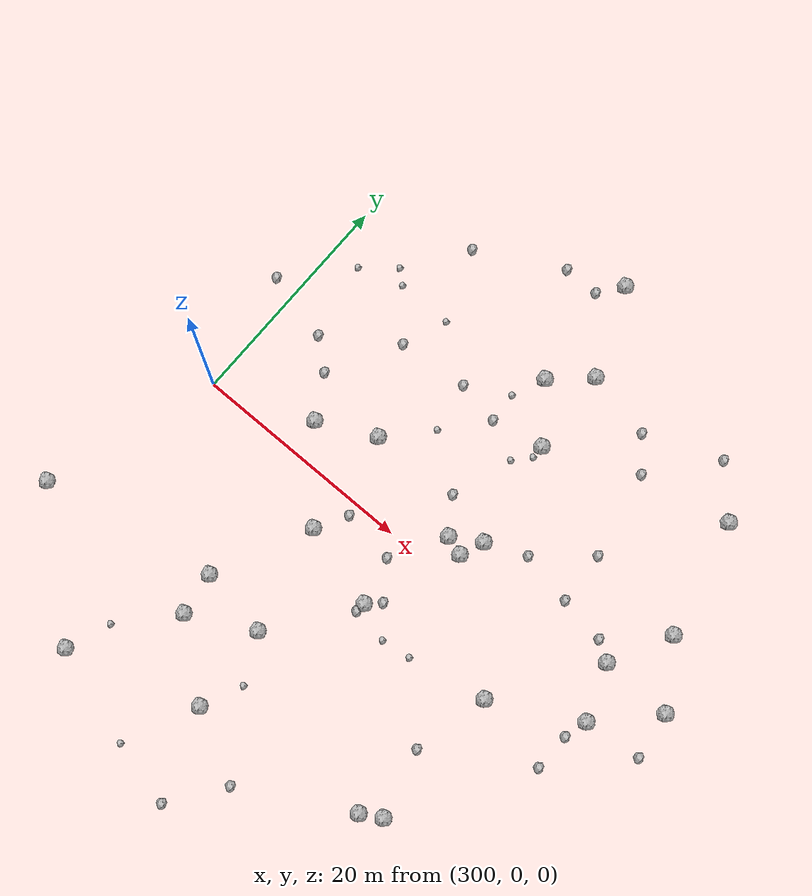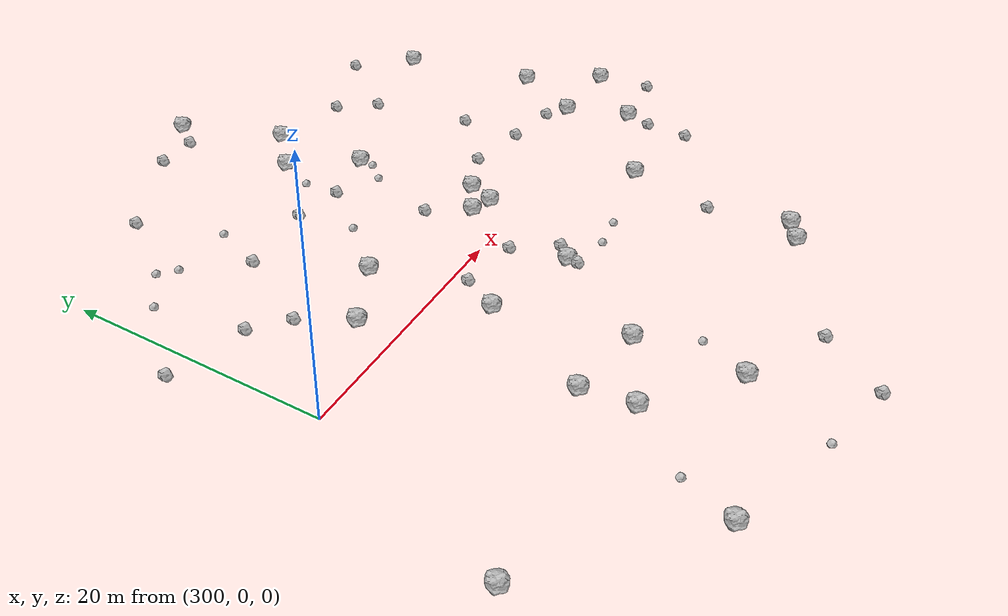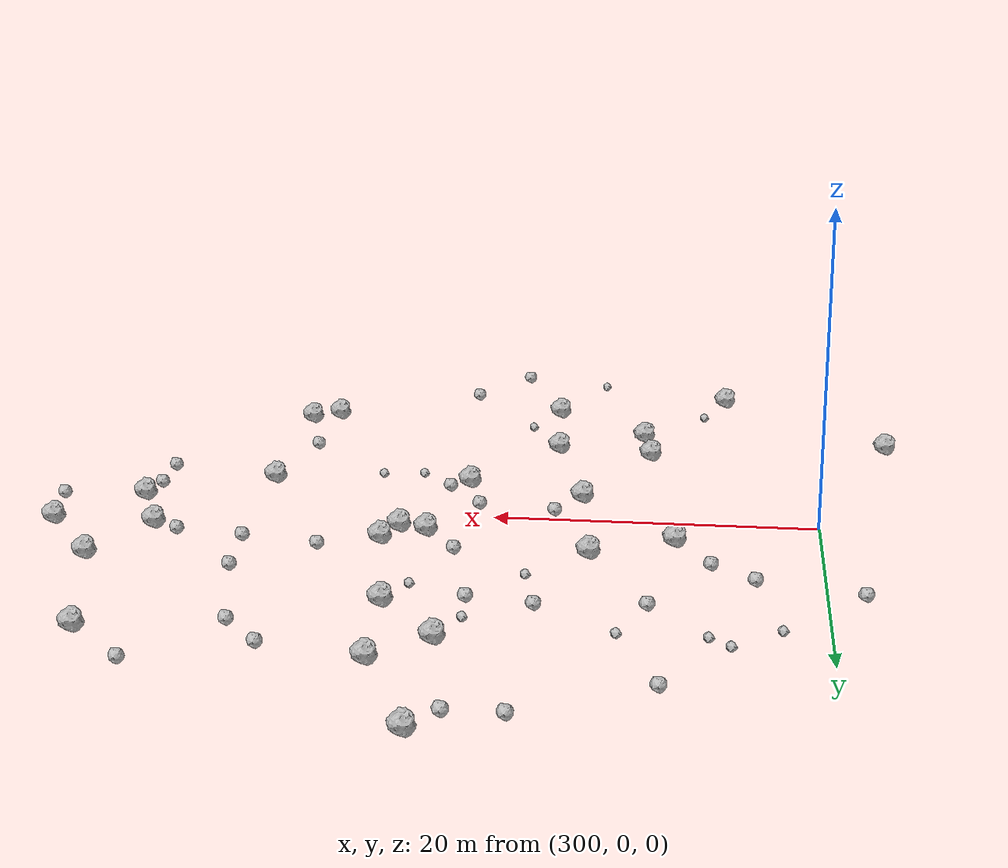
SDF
<sdf version="1.6">
 <world name="default">
  <include><uri>model://sun</uri></include>
  <model name="rock1_8_2">
   <include><uri>model://rock1</uri><pose>343.5614238039679 8.65994704328756 0.5 0 0 0</pose></include>
  </model>
  <model name="rock1_8_3">
   <include><uri>model://rock1</uri><pose>317.39145370163317 -21.369708069768677 0.5 0 0 0</pose></include>
  </model>
  <model name="rock1_8_4">
   <include><uri>model://rock1</uri><pose>340.7699369049381 3.270221666698639 0.5 0 0 0</pose></include>
  </model>
  <model name="rock1_8_5">
   <include><uri>model://rock1</uri><pose>308.78048914035577 3.151519740156175 0.5 0 0 0</pose></include>
  </model>
  <model name="rock1_8_6">
   <include><uri>model://rock1</uri><pose>334.86920854676544 -18.442619014291846 0.5 0 0 0</pose></include>
  </model>
  <model name="rock1_8_7">
   <include><uri>model://rock1</uri><pose>347.13186227085225 3.1360334075372265 0.5 0 0 0</pose></include>
  </model>
  <model name="rock1_8_8">
   <include><uri>model://rock1</uri><pose>326.4894609244206 4.433762117454805 0.5 0 0 0</pose></include>
  </model>
  <model name="rock1_8_9">
   <include><uri>model://rock1</uri><pose>325.62811777101683 2.319030448657884 0.5 0 0 0</pose></include>
  </model>
  <model name="rock1_8_10">
   <include><uri>model://rock1</uri><pose>333.0844712979249 -19.473799111217325 0.5 0 0 0</pose></include>
  </model>
  <model name="rock1_8_11">
   <include><uri>model://rock1</uri><pose>311.2551204223616 -16.435522388154588 0.5 0 0 0</pose></include>
  </model>
  <model name="rock1_8_12">
   <include><uri>model://rock1</uri><pose>314.77168146088246 -3.9689120745949467 0.5 0 0 0</pose></include>
  </model>
  <model name="rock1_8_13">
   <include><uri>model://rock1</uri><pose>324.6244734945305 21.64445033590774 0.5 0 0 0</pose></include>
  </model>
  <model name="rock1_8_14">
   <include><uri>model://rock1</uri><pose>305.6786174065834 -24.998955018333973 0.5 0 0 0</pose></include>
  </model>
  <model name="rock1_8_15">
   <include><uri>model://rock1</uri><pose>321.4167087565769 18.711921568260436 0.5 0 0 0</pose></include>
  </model>
  <model name="rock1_8_16">
   <include><uri>model://rock1</uri><pose>313.82739794976146 5.581569732228218 0.5 0 0 0</pose></include>
  </model>
  <model name="rock1_8_17">
   <include><uri>model://rock1</uri><pose>341.15338653460606 19.134328469310425 0.5 0 0 0</pose></include>
  </model>
  <model name="rock1_8_18">
   <include><uri>model://rock1</uri><pose>323.9028156993473 2.8818121976317173 0.5 0 0 0</pose></include>
  </model>
  <model name="rock1_8_19">
   <include><uri>model://rock1</uri><pose>342.5704444938446 -1.6189736535997064 0.5 0 0 0</pose></include>
  </model>
  <model name="rock1_8_20">
   <include><uri>model://rock1</uri><pose>294.94117803098214 -15.520933640791322 0.5 0 0 0</pose></include>
  </model>
  <model name="rock1_8_21">
   <include><uri>model://rock1</uri><pose>334.9589706462706 -5.651460827757639 0.5 0 0 0</pose></include>
  </model>
  <model name="rock1_8_22">
   <include><uri>model://rock1</uri><pose>321.45874367275286 29.61271866112684 0.5 0 0 0</pose></include>
  </model>
  <model name="rock1_8_23">
   <include><uri>model://rock1</uri><pose>322.1982075011481 -6.065303930339539 0.5 0 0 0</pose></include>
  </model>
  <model name="rock1_8_24">
   <include><uri>model://rock1</uri><pose>316.9372839265079 -13.53953766688451 0.5 0 0 0</pose></include>
  </model>
  <model name="rock1_8_25">
   <include><uri>model://rock1</uri><pose>324.97911140489555 13.954747445069039 0.5 0 0 0</pose></include>
  </model>
  <model name="rock1_8_26">
   <include><uri>model://rock1</uri><pose>310.7000506465224 -12.590539084194269 0.5 0 0 0</pose></include>
  </model>
  <model name="rock2_8_0">
   <include><uri>model://rock2</uri><pose>316.38196030840555 13.809797871390877 0.3 0 0 0</pose></include>
  </model>
  <model name="rock2_8_1">
   <include><uri>model://rock2</uri><pose>304.0167419231716 9.110940962560186 0.3 0 0 0</pose></include>
  </model>
  <model name="rock2_8_2">
   <include><uri>model://rock2</uri><pose>334.8012731671291 5.1030609353105945 0.3 0 0 0</pose></include>
  </model>
  <model name="rock2_8_3">
   <include><uri>model://rock2</uri><pose>322.07781455648194 -6.898788953841411 0.3 0 0 0</pose></include>
  </model>
  <model name="rock2_8_4">
   <include><uri>model://rock2</uri><pose>320.2873572829506 13.09298250039609 0.3 0 0 0</pose></include>
  </model>
  <model name="rock2_8_5">
   <include><uri>model://rock2</uri><pose>330.05092170437234 5.989847832318269 0.3 0 0 0</pose></include>
  </model>
  <model name="rock2_8_6">
   <include><uri>model://rock2</uri><pose>297.86465494381355 10.695626419073093 0.3 0 0 0</pose></include>
  </model>
  <model name="rock2_8_7">
   <include><uri>model://rock2</uri><pose>321.8196099126527 5.918368493547597 0.3 0 0 0</pose></include>
  </model>
  <model name="rock2_8_8">
   <include><uri>model://rock2</uri><pose>332.9161030080496 17.61983730110841 0.3 0 0 0</pose></include>
  </model>
  <model name="rock2_8_9">
   <include><uri>model://rock2</uri><pose>337.47895229012227 23.11803334942077 0.3 0 0 0</pose></include>
  </model>
  <model name="rock2_8_10">
   <include><uri>model://rock2</uri><pose>309.16556241750084 23.639826976767914 0.3 0 0 0</pose></include>
  </model>
  <model name="rock2_8_11">
   <include><uri>model://rock2</uri><pose>339.01599979680634 4.409365999275458 0.3 0 0 0</pose></include>
  </model>
  <model name="rock2_8_12">
   <include><uri>model://rock2</uri><pose>330.7044773100157 20.442347288627772 0.3 0 0 0</pose></include>
  </model>
  <model name="rock2_8_13">
   <include><uri>model://rock2</uri><pose>306.5667493935433 6.94811519070754 0.3 0 0 0</pose></include>
  </model>
  <model name="rock2_8_14">
   <include><uri>model://rock2</uri><pose>323.3119435793124 -4.9271323960314675 0.3 0 0 0</pose></include>
  </model>
  <model name="rock2_8_15">
   <include><uri>model://rock2</uri><pose>341.9894439107749 -3.6771401589354262 0.3 0 0 0</pose></include>
  </model>
  <model name="rock2_8_16">
   <include><uri>model://rock2</uri><pose>334.52587416421085 9.816050698859193 0.3 0 0 0</pose></include>
  </model>
  <model name="rock2_8_17">
   <include><uri>model://rock2</uri><pose>319.8216630371407 27.557654571006772 0.3 0 0 0</pose></include>
  </model>
  <model name="rock2_8_18">
   <include><uri>model://rock2</uri><pose>321.0998105443282 -1.8245981918730934 0.3 0 0 0</pose></include>
  </model>
  <model name="rock2_8_19">
   <include><uri>model://rock2</uri><pose>341.9308514255599 -7.040802493221257 0.3 0 0 0</pose></include>
  </model>
  <model name="rock2_8_20">
   <include><uri>model://rock2</uri><pose>333.32854076669 -12.39112730157834 0.3 0 0 0</pose></include>
  </model>
  <model name="rock2_8_21">
   <include><uri>model://rock2</uri><pose>347.69862414236053 -1.0794529184627137 0.3 0 0 0</pose></include>
  </model>
  <model name="rock2_8_22">
   <include><uri>model://rock2</uri><pose>316.31240115291007 -1.1308218641297003 0.3 0 0 0</pose></include>
  </model>
  <model name="rock2_8_23">
   <include><uri>model://rock2</uri><pose>320.2291961062908 -29.33600172729649 0.3 0 0 0</pose></include>
  </model>
  <model name="rock2_8_24">
   <include><uri>model://rock2</uri><pose>323.592876281838 -24.61450156598257 0.3 0 0 0</pose></include>
  </model>
  <model name="rock2_8_25">
   <include><uri>model://rock2</uri><pose>316.59655905083434 27.577474723820025 0.3 0 0 0</pose></include>
  </model>
  <model name="rock2_8_26">
   <include><uri>model://rock2</uri><pose>310.0776701631496 13.244291235481228 0.3 0 0 0</pose></include>
  </model>
  <model name="rock3_8_0">
   <include><uri>model://rock3</uri><pose>323.6619337275326 11.363177425866581 0.2 0 0 0</pose></include>
  </model>
  <model name="rock3_8_1">
   <include><uri>model://rock3</uri><pose>320.1030970579937 15.820347613960614 0.2 0 0 0</pose></include>
  </model>
  <model name="rock3_8_2">
   <include><uri>model://rock3</uri><pose>318.97589949864084 -17.771771997408166 0.2 0 0 0</pose></include>
  </model>
  <model name="rock3_8_3">
   <include><uri>model://rock3</uri><pose>317.19762717068636 9.34807111878223 0.2 0 0 0</pose></include>
  </model>
  <model name="rock3_8_4">
   <include><uri>model://rock3</uri><pose>324.94527865909043 12.805286376198538 0.2 0 0 0</pose></include>
  </model>
  <model name="rock3_8_5">
   <include><uri>model://rock3</uri><pose>325.3071322223919 -7.399083098277146 0.2 0 0 0</pose></include>
  </model>
  <model name="rock3_8_6">
   <include><uri>model://rock3</uri><pose>302.6240870235965 15.938447464382023 0.2 0 0 0</pose></include>
  </model>
  <model name="rock3_8_7">
   <include><uri>model://rock3</uri><pose>307.10348705746077 -21.098300761945424 0.2 0 0 0</pose></include>
  </model>
  <model name="rock3_8_8">
   <include><uri>model://rock3</uri><pose>314.354168977888 -27.917996087537656 0.2 0 0 0</pose></include>
  </model>
  <model name="rock3_8_9">
   <include><uri>model://rock3</uri><pose>311.6025671922479 17.160976692940352 0.2 0 0 0</pose></include>
  </model>
  <model name="rock3_8_10">
   <include><uri>model://rock3</uri><pose>305.42565628231347 18.263827200776433 0.2 0 0 0</pose></include>
  </model>
  <model name="rock3_8_11">
   <include><uri>model://rock3</uri><pose>306.6245620003138 17.20062907043527 0.2 0 0 0</pose></include>
  </model>
  <model name="rock3_8_12">
   <include><uri>model://rock3</uri><pose>327.94168149331085 -7.060480112565472 0.2 0 0 0</pose></include>
  </model>
 </world>
</sdf>
